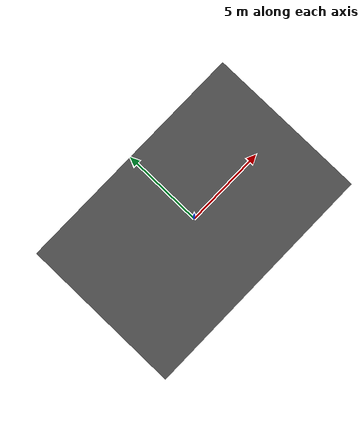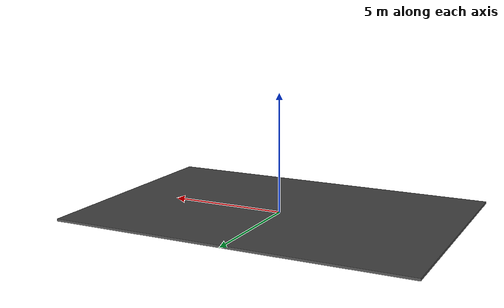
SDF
<?xml version='1.0'?>
<sdf version='1.6'>
  <model name='route2'>
    <pose frame=''>0 0 0 0 0 0</pose>
    <link name='Wall_0'>
      <collision name='Wall_0_Collision'>
        <geometry>
          <box>
            <size>15 10 0.1</size>
          </box>
        </geometry>
        <pose frame=''>0 0 0.05 0 -0 0</pose>
      </collision>
      <visual name='Wall_0_Visual'>
        <pose frame=''>0 0 0.05 0 -0 0</pose>
        <geometry>
          <box>
            <size>15 10 0.1</size>
          </box>
        </geometry>
        <material>
          <script>
            <uri>file://media/materials/scripts/gazebo.material</uri>
            <name>Gazebo/Road2</name>
          </script>
          <ambient>1 1 1 1</ambient>
        </material>
        <meta>
          <layer>0</layer>
        </meta>
      </visual>
      <pose frame=''>0 0 0 0 0 0</pose>
    </link>
    <static>1</static>
  </model>
</sdf>
